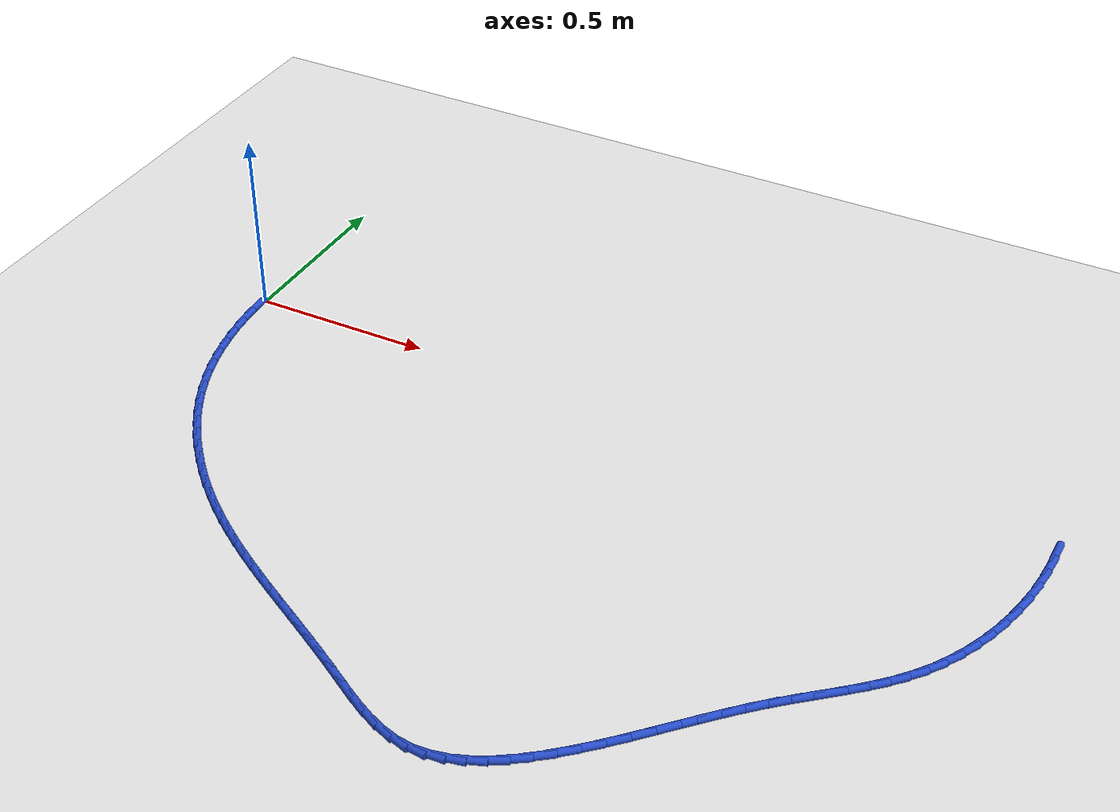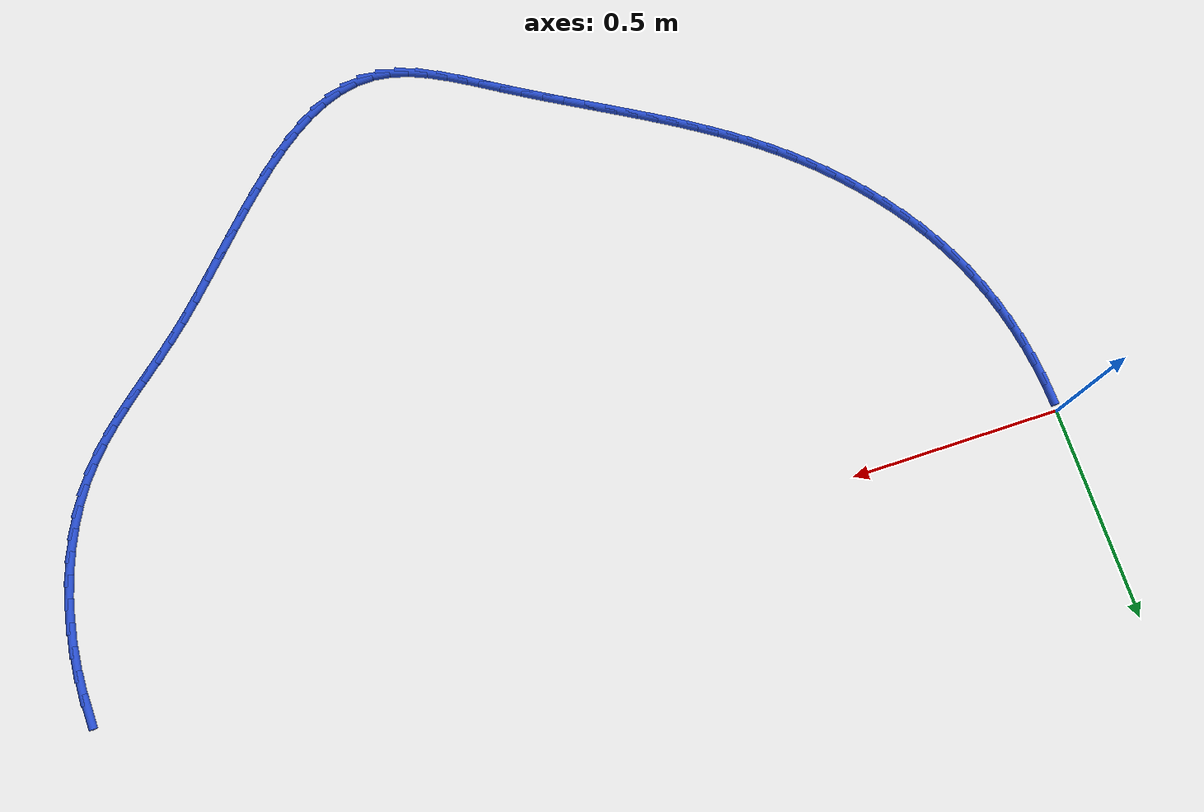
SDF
<sdf version="1.6">
 <world name="default">
  <model name="ground_plane">
   <static>1</static>
   <link name="link">
    <collision name="collision">
     <geometry><plane><normal>0 0 1</normal><size>100 100</size></plane></geometry>
     <surface><friction><ode><mu>100</mu><mu2>50</mu2></ode></friction></surface>
    </collision>
    <visual name="visual">
     <cast_shadows>0</cast_shadows>
     <geometry><plane><normal>0 0 1</normal><size>100 100</size></plane></geometry>
     <material>
      <script><uri>file://media/materials/scripts/gazebo.material</uri><name>Gazebo/WhiteGlow</name></script>
     </material>
    </visual>
   </link>
  </model>
  <model name="line">
   <link name="link_69">
    <pose>2.2905881452291728 -0.03405568172153571 0.01 0 1.57 -1.5349915259451106</pose>
    <collision name="collision">
     <geometry><cylinder><radius>0.01</radius><length>0.08</length></cylinder></geometry>
    </collision>
    <visual name="visual">
     <material>
      <script><name>Gazebo/Blue</name><uri>file://media/materials/scripts/gazebo.material</uri></script>
     </material>
     <geometry><cylinder><radius>0.01</radius><length>0.08</length></cylinder></geometry>
    </visual>
   </link>
   <link name="link_70">
    <pose>2.292531629596753 -0.08831247816643287 0.01 0 1.57 1.547344712376488</pose>
    <collision name="collision">
     <geometry><cylinder><radius>0.01</radius><length>0.08</length></cylinder></geometry>
    </collision>
    <visual name="visual">
     <material>
      <script><name>Gazebo/Blue</name><uri>file://media/materials/scripts/gazebo.material</uri></script>
     </material>
     <geometry><cylinder><radius>0.01</radius><length>0.08</length></cylinder></geometry>
    </visual>
   </link>
   <link name="link_71">
    <pose>2.291256569939955 -0.1426723134341711 0.01 0 1.57 1.488374771274081</pose>
    <collision name="collision">
     <geometry><cylinder><radius>0.01</radius><length>0.08</length></cylinder></geometry>
    </collision>
    <visual name="visual">
     <material>
      <script><name>Gazebo/Blue</name><uri>file://media/materials/scripts/gazebo.material</uri></script>
     </material>
     <geometry><cylinder><radius>0.01</radius><length>0.08</length></cylinder></geometry>
    </visual>
   </link>
   <link name="link_72">
    <pose>2.2867859690475045 -0.19679010919475426 0.01 0 1.57 1.4289743394219034</pose>
    <collision name="collision">
     <geometry><cylinder><radius>0.01</radius><length>0.08</length></cylinder></geometry>
    </collision>
    <visual name="visual">
     <material>
      <script><name>Gazebo/Blue</name><uri>file://media/materials/scripts/gazebo.material</uri></script>
     </material>
     <geometry><cylinder><radius>0.01</radius><length>0.08</length></cylinder></geometry>
    </visual>
   </link>
   <link name="link_73">
    <pose>2.279142829708126 -0.25032078711818645 0.01 0 1.57 1.3684155358077381</pose>
    <collision name="collision">
     <geometry><cylinder><radius>0.01</radius><length>0.08</length></cylinder></geometry>
    </collision>
    <visual name="visual">
     <material>
      <script><name>Gazebo/Blue</name><uri>file://media/materials/scripts/gazebo.material</uri></script>
     </material>
     <geometry><cylinder><radius>0.01</radius><length>0.08</length></cylinder></geometry>
    </visual>
   </link>
   <link name="link_74">
    <pose>2.268350154710547 -0.30291926887446946 0.01 0 1.57 1.3059500956653918</pose>
    <collision name="collision">
     <geometry><cylinder><radius>0.01</radius><length>0.08</length></cylinder></geometry>
    </collision>
    <visual name="visual">
     <material>
      <script><name>Gazebo/Blue</name><uri>file://media/materials/scripts/gazebo.material</uri></script>
     </material>
     <geometry><cylinder><radius>0.01</radius><length>0.08</length></cylinder></geometry>
    </visual>
   </link>
   <link name="link_75">
    <pose>2.2544309468434904 -0.35424047613360743 0.01 0 1.57 1.240802730282927</pose>
    <collision name="collision">
     <geometry><cylinder><radius>0.01</radius><length>0.08</length></cylinder></geometry>
    </collision>
    <visual name="visual">
     <material>
      <script><name>Gazebo/Blue</name><uri>file://media/materials/scripts/gazebo.material</uri></script>
     </material>
     <geometry><cylinder><radius>0.01</radius><length>0.08</length></cylinder></geometry>
    </visual>
   </link>
   <link name="link_76">
    <pose>2.237408208895684 -0.4039393305656038 0.01 0 1.57 1.172170246252659</pose>
    <collision name="collision">
     <geometry><cylinder><radius>0.01</radius><length>0.08</length></cylinder></geometry>
    </collision>
    <visual name="visual">
     <material>
      <script><name>Gazebo/Blue</name><uri>file://media/materials/scripts/gazebo.material</uri></script>
     </material>
     <geometry><cylinder><radius>0.01</radius><length>0.08</length></cylinder></geometry>
    </visual>
   </link>
   <link name="link_77">
    <pose>2.2173049436558534 -0.45167075384046196 0.01 0 1.57 1.0992306670727405</pose>
    <collision name="collision">
     <geometry><cylinder><radius>0.01</radius><length>0.08</length></cylinder></geometry>
    </collision>
    <visual name="visual">
     <material>
      <script><name>Gazebo/Blue</name><uri>file://media/materials/scripts/gazebo.material</uri></script>
     </material>
     <geometry><cylinder><radius>0.01</radius><length>0.08</length></cylinder></geometry>
    </visual>
   </link>
   <link name="link_78">
    <pose>2.194144153912722 -0.4970896676281859 0.01 0 1.57 1.0211683048369975</pose>
    <collision name="collision">
     <geometry><cylinder><radius>0.01</radius><length>0.08</length></cylinder></geometry>
    </collision>
    <visual name="visual">
     <material>
      <script><name>Gazebo/Blue</name><uri>file://media/materials/scripts/gazebo.material</uri></script>
     </material>
     <geometry><cylinder><radius>0.01</radius><length>0.08</length></cylinder></geometry>
    </visual>
   </link>
   <link name="link_79">
    <pose>2.167948842455017 -0.5398509935987776 0.01 0 1.57 0.9375025532515058</pose>
    <collision name="collision">
     <geometry><cylinder><radius>0.01</radius><length>0.08</length></cylinder></geometry>
    </collision>
    <visual name="visual">
     <material>
      <script><name>Gazebo/Blue</name><uri>file://media/materials/scripts/gazebo.material</uri></script>
     </material>
     <geometry><cylinder><radius>0.01</radius><length>0.08</length></cylinder></geometry>
    </visual>
   </link>
   <link name="link_80">
    <pose>2.1387476147788984 -0.5796253803741541 0.01 0 1.57 0.8571295840001061</pose>
    <collision name="collision">
     <geometry><cylinder><radius>0.01</radius><length>0.08</length></cylinder></geometry>
    </collision>
    <visual name="visual">
     <material>
      <script><name>Gazebo/Blue</name><uri>file://media/materials/scripts/gazebo.material</uri></script>
     </material>
     <geometry><cylinder><radius>0.01</radius><length>0.08</length></cylinder></geometry>
    </visual>
   </link>
   <link name="link_81">
    <pose>2.1067464695293574 -0.6165814239622107 0.01 0 1.57 0.7927398570487014</pose>
    <collision name="collision">
     <geometry><cylinder><radius>0.01</radius><length>0.08</length></cylinder></geometry>
    </collision>
    <visual name="visual">
     <material>
      <script><name>Gazebo/Blue</name><uri>file://media/materials/scripts/gazebo.material</uri></script>
     </material>
     <geometry><cylinder><radius>0.01</radius><length>0.08</length></cylinder></geometry>
    </visual>
   </link>
   <link name="link_82">
    <pose>2.072360862323251 -0.6514756717787852 0.01 0 1.57 0.7465462474326663</pose>
    <collision name="collision">
     <geometry><cylinder><radius>0.01</radius><length>0.08</length></cylinder></geometry>
    </collision>
    <visual name="visual">
     <material>
      <script><name>Gazebo/Blue</name><uri>file://media/materials/scripts/gazebo.material</uri></script>
     </material>
     <geometry><cylinder><radius>0.01</radius><length>0.08</length></cylinder></geometry>
    </visual>
   </link>
   <link name="link_83">
    <pose>2.036018319795308 -0.6850985549146714 0.01 0 1.57 0.7188896999915876</pose>
    <collision name="collision">
     <geometry><cylinder><radius>0.01</radius><length>0.08</length></cylinder></geometry>
    </collision>
    <visual name="visual">
     <material>
      <script><name>Gazebo/Blue</name><uri>file://media/materials/scripts/gazebo.material</uri></script>
     </material>
     <geometry><cylinder><radius>0.01</radius><length>0.08</length></cylinder></geometry>
    </visual>
   </link>
   <link name="link_84">
    <pose>1.9981463685802545 -0.7182405044606647 0.01 0 1.57 0.709295992482945</pose>
    <collision name="collision">
     <geometry><cylinder><radius>0.01</radius><length>0.08</length></cylinder></geometry>
    </collision>
    <visual name="visual">
     <material>
      <script><name>Gazebo/Blue</name><uri>file://media/materials/scripts/gazebo.material</uri></script>
     </material>
     <geometry><cylinder><radius>0.01</radius><length>0.08</length></cylinder></geometry>
    </visual>
   </link>
   <link name="link_85">
    <pose>1.959172535312819 -0.7516919515075599 0.01 0 1.57 0.716815289029403</pose>
    <collision name="collision">
     <geometry><cylinder><radius>0.01</radius><length>0.08</length></cylinder></geometry>
    </collision>
    <visual name="visual">
     <material>
      <script><name>Gazebo/Blue</name><uri>file://media/materials/scripts/gazebo.material</uri></script>
     </material>
     <geometry><cylinder><radius>0.01</radius><length>0.08</length></cylinder></geometry>
    </visual>
   </link>
   <link name="link_86">
    <pose>1.919524346627728 -0.7862433271461517 0.01 0 1.57 0.7401914751983255</pose>
    <collision name="collision">
     <geometry><cylinder><radius>0.01</radius><length>0.08</length></cylinder></geometry>
    </collision>
    <visual name="visual">
     <material>
      <script><name>Gazebo/Blue</name><uri>file://media/materials/scripts/gazebo.material</uri></script>
     </material>
     <geometry><cylinder><radius>0.01</radius><length>0.08</length></cylinder></geometry>
    </visual>
   </link>
   <link name="link_87">
    <pose>1.8796293285873504 -0.8226850607092993 0.01 0 1.57 0.7734311277408342</pose>
    <collision name="collision">
     <geometry><cylinder><radius>0.01</radius><length>0.08</length></cylinder></geometry>
    </collision>
    <visual name="visual">
     <material>
      <script><name>Gazebo/Blue</name><uri>file://media/materials/scripts/gazebo.material</uri></script>
     </material>
     <geometry><cylinder><radius>0.01</radius><length>0.08</length></cylinder></geometry>
    </visual>
   </link>
   <link name="link_88">
    <pose>1.8398291498522212 -0.8615438794787794 0.01 0 1.57 0.7992972988948601</pose>
    <collision name="collision">
     <geometry><cylinder><radius>0.01</radius><length>0.08</length></cylinder></geometry>
    </collision>
    <visual name="visual">
     <material>
      <script><name>Gazebo/Blue</name><uri>file://media/materials/scripts/gazebo.material</uri></script>
     </material>
     <geometry><cylinder><radius>0.01</radius><length>0.08</length></cylinder></geometry>
    </visual>
   </link>
   <link name="link_89">
    <pose>1.8001412458244523 -0.9023506621147867 0.01 0 1.57 0.8149648660872176</pose>
    <collision name="collision">
     <geometry><cylinder><radius>0.01</radius><length>0.08</length></cylinder></geometry>
    </collision>
    <visual name="visual">
     <material>
      <script><name>Gazebo/Blue</name><uri>file://media/materials/scripts/gazebo.material</uri></script>
     </material>
     <geometry><cylinder><radius>0.01</radius><length>0.08</length></cylinder></geometry>
    </visual>
   </link>
   <link name="link_90">
    <pose>1.760506527272239 -0.9444012498492852 0.01 0 1.57 0.8212526810795969</pose>
    <collision name="collision">
     <geometry><cylinder><radius>0.01</radius><length>0.08</length></cylinder></geometry>
    </collision>
    <visual name="visual">
     <material>
      <script><name>Gazebo/Blue</name><uri>file://media/materials/scripts/gazebo.material</uri></script>
     </material>
     <geometry><cylinder><radius>0.01</radius><length>0.08</length></cylinder></geometry>
    </visual>
   </link>
   <link name="link_91">
    <pose>1.7208659049637767 -0.9869914839142405 0.01 0 1.57 0.8185050450709923</pose>
    <collision name="collision">
     <geometry><cylinder><radius>0.01</radius><length>0.08</length></cylinder></geometry>
    </collision>
    <visual name="visual">
     <material>
      <script><name>Gazebo/Blue</name><uri>file://media/materials/scripts/gazebo.material</uri></script>
     </material>
     <geometry><cylinder><radius>0.01</radius><length>0.08</length></cylinder></geometry>
    </visual>
   </link>
   <link name="link_92">
    <pose>1.681160289667262 -1.0294172055416158 0.01 0 1.57 0.8066189843824776</pose>
    <collision name="collision">
     <geometry><cylinder><radius>0.01</radius><length>0.08</length></cylinder></geometry>
    </collision>
    <visual name="visual">
     <material>
      <script><name>Gazebo/Blue</name><uri>file://media/materials/scripts/gazebo.material</uri></script>
     </material>
     <geometry><cylinder><radius>0.01</radius><length>0.08</length></cylinder></geometry>
    </visual>
   </link>
   <link name="link_93">
    <pose>1.6413305921508894 -1.070974255963376 0.01 0 1.57 0.7850400438844864</pose>
    <collision name="collision">
     <geometry><cylinder><radius>0.01</radius><length>0.08</length></cylinder></geometry>
    </collision>
    <visual name="visual">
     <material>
      <script><name>Gazebo/Blue</name><uri>file://media/materials/scripts/gazebo.material</uri></script>
     </material>
     <geometry><cylinder><radius>0.01</radius><length>0.08</length></cylinder></geometry>
    </visual>
   </link>
   <link name="link_94">
    <pose>1.6013177231828548 -1.1109584764114857 0.01 0 1.57 0.7527286625997496</pose>
    <collision name="collision">
     <geometry><cylinder><radius>0.01</radius><length>0.08</length></cylinder></geometry>
    </collision>
    <visual name="visual">
     <material>
      <script><name>Gazebo/Blue</name><uri>file://media/materials/scripts/gazebo.material</uri></script>
     </material>
     <geometry><cylinder><radius>0.01</radius><length>0.08</length></cylinder></geometry>
    </visual>
   </link>
   <link name="link_95">
    <pose>1.5610625935313522 -1.14866570811791 0.01 0 1.57 0.7081056280828703</pose>
    <collision name="collision">
     <geometry><cylinder><radius>0.01</radius><length>0.08</length></cylinder></geometry>
    </collision>
    <visual name="visual">
     <material>
      <script><name>Gazebo/Blue</name><uri>file://media/materials/scripts/gazebo.material</uri></script>
     </material>
     <geometry><cylinder><radius>0.01</radius><length>0.08</length></cylinder></geometry>
    </visual>
   </link>
   <link name="link_96">
    <pose>1.520506113964579 -1.1833917923146118 0.01 0 1.57 0.649001094173011</pose>
    <collision name="collision">
     <geometry><cylinder><radius>0.01</radius><length>0.08</length></cylinder></geometry>
    </collision>
    <visual name="visual">
     <material>
      <script><name>Gazebo/Blue</name><uri>file://media/materials/scripts/gazebo.material</uri></script>
     </material>
     <geometry><cylinder><radius>0.01</radius><length>0.08</length></cylinder></geometry>
    </visual>
   </link>
   <link name="link_97">
    <pose>1.4795891952507296 -1.2144325702335568 0.01 0 1.57 0.572669501506226</pose>
    <collision name="collision">
     <geometry><cylinder><radius>0.01</radius><length>0.08</length></cylinder></geometry>
    </collision>
    <visual name="visual">
     <material>
      <script><name>Gazebo/Blue</name><uri>file://media/materials/scripts/gazebo.material</uri></script>
     </material>
     <geometry><cylinder><radius>0.01</radius><length>0.08</length></cylinder></geometry>
    </visual>
   </link>
   <link name="link_98">
    <pose>1.4382527481579994 -1.241083883106709 0.01 0 1.57 0.4760088044756101</pose>
    <collision name="collision">
     <geometry><cylinder><radius>0.01</radius><length>0.08</length></cylinder></geometry>
    </collision>
    <visual name="visual">
     <material>
      <script><name>Gazebo/Blue</name><uri>file://media/materials/scripts/gazebo.material</uri></script>
     </material>
     <geometry><cylinder><radius>0.01</radius><length>0.08</length></cylinder></geometry>
    </visual>
   </link>
   <link name="link_99">
    <pose>1.396437683454584 -1.2626415721660331 0.01 0 1.57 0.35623491289577136</pose>
    <collision name="collision">
     <geometry><cylinder><radius>0.01</radius><length>0.08</length></cylinder></geometry>
    </collision>
    <visual name="visual">
     <material>
      <script><name>Gazebo/Blue</name><uri>file://media/materials/scripts/gazebo.material</uri></script>
     </material>
     <geometry><cylinder><radius>0.01</radius><length>0.08</length></cylinder></geometry>
    </visual>
   </link>
   <link name="link_100">
    <pose>1.354084911908678 -1.2784014786434934 0.01 0 1.57 0.21230593463131833</pose>
    <collision name="collision">
     <geometry><cylinder><radius>0.01</radius><length>0.08</length></cylinder></geometry>
    </collision>
    <visual name="visual">
     <material>
      <script><name>Gazebo/Blue</name><uri>file://media/materials/scripts/gazebo.material</uri></script>
     </material>
     <geometry><cylinder><radius>0.01</radius><length>0.08</length></cylinder></geometry>
    </visual>
   </link>
   <link name="link_101">
    <pose>1.3111353442884779 -1.2876594437710545 0.01 0 1.57 0.047020555244151316</pose>
    <collision name="collision">
     <geometry><cylinder><radius>0.01</radius><length>0.08</length></cylinder></geometry>
    </collision>
    <visual name="visual">
     <material>
      <script><name>Gazebo/Blue</name><uri>file://media/materials/scripts/gazebo.material</uri></script>
     </material>
     <geometry><cylinder><radius>0.01</radius><length>0.08</length></cylinder></geometry>
    </visual>
   </link>
   <link name="link_102">
    <pose>1.2675298913621793 -1.289711308780681 0.01 0 1.57 -0.13091471887019346</pose>
    <collision name="collision">
     <geometry><cylinder><radius>0.01</radius><length>0.08</length></cylinder></geometry>
    </collision>
    <visual name="visual">
     <material>
      <script><name>Gazebo/Blue</name><uri>file://media/materials/scripts/gazebo.material</uri></script>
     </material>
     <geometry><cylinder><radius>0.01</radius><length>0.08</length></cylinder></geometry>
    </visual>
   </link>
   <link name="link_103">
    <pose>1.2232117244146907 -1.283876033991782 0.01 0 1.57 -0.2905737713174524</pose>
    <collision name="collision">
     <geometry><cylinder><radius>0.01</radius><length>0.08</length></cylinder></geometry>
    </collision>
    <visual name="visual">
     <material>
      <script><name>Gazebo/Blue</name><uri>file://media/materials/scripts/gazebo.material</uri></script>
     </material>
     <geometry><cylinder><radius>0.01</radius><length>0.08</length></cylinder></geometry>
    </visual>
   </link>
   <link name="link_104">
    <pose>1.178216732093151 -1.2704208323033115 0.01 0 1.57 -0.4056576552784526</pose>
    <collision name="collision">
     <geometry><cylinder><radius>0.01</radius><length>0.08</length></cylinder></geometry>
    </collision>
    <visual name="visual">
     <material>
      <script><name>Gazebo/Blue</name><uri>file://media/materials/scripts/gazebo.material</uri></script>
     </material>
     <geometry><cylinder><radius>0.01</radius><length>0.08</length></cylinder></geometry>
    </visual>
   </link>
   <link name="link_105">
    <pose>1.1327041233461455 -1.2508741560535659 0.01 0 1.57 -0.4824992332986203</pose>
    <collision name="collision">
     <geometry><cylinder><radius>0.01</radius><length>0.08</length></cylinder></geometry>
    </collision>
    <visual name="visual">
     <material>
      <script><name>Gazebo/Blue</name><uri>file://media/materials/scripts/gazebo.material</uri></script>
     </material>
     <geometry><cylinder><radius>0.01</radius><length>0.08</length></cylinder></geometry>
    </visual>
   </link>
   <link name="link_106">
    <pose>1.086841644746767 -1.2268517748240202 0.01 0 1.57 -0.5284465047449839</pose>
    <collision name="collision">
     <geometry><cylinder><radius>0.01</radius><length>0.08</length></cylinder></geometry>
    </collision>
    <visual name="visual">
     <material>
      <script><name>Gazebo/Blue</name><uri>file://media/materials/scripts/gazebo.material</uri></script>
     </material>
     <geometry><cylinder><radius>0.01</radius><length>0.08</length></cylinder></geometry>
    </visual>
   </link>
   <link name="link_107">
    <pose>1.040797042868111 -1.19996945819615 0.01 0 1.57 -0.5482225725851608</pose>
    <collision name="collision">
     <geometry><cylinder><radius>0.01</radius><length>0.08</length></cylinder></geometry>
    </collision>
    <visual name="visual">
     <material>
      <script><name>Gazebo/Blue</name><uri>file://media/materials/scripts/gazebo.material</uri></script>
     </material>
     <geometry><cylinder><radius>0.01</radius><length>0.08</length></cylinder></geometry>
    </visual>
   </link>
   <link name="link_108">
    <pose>0.9947380642832707 -1.17184297575143 0.01 0 1.57 -0.544639673595588</pose>
    <collision name="collision">
     <geometry><cylinder><radius>0.01</radius><length>0.08</length></cylinder></geometry>
    </collision>
    <visual name="visual">
     <material>
      <script><name>Gazebo/Blue</name><uri>file://media/materials/scripts/gazebo.material</uri></script>
     </material>
     <geometry><cylinder><radius>0.01</radius><length>0.08</length></cylinder></geometry>
    </visual>
   </link>
   <link name="link_109">
    <pose>0.9488288367847354 -1.1440332757342941 0.01 0 1.57 -0.532026081633951</pose>
    <collision name="collision">
     <geometry><cylinder><radius>0.01</radius><length>0.08</length></cylinder></geometry>
    </collision>
    <visual name="visual">
     <material>
      <script><name>Gazebo/Blue</name><uri>file://media/materials/scripts/gazebo.material</uri></script>
     </material>
     <geometry><cylinder><radius>0.01</radius><length>0.08</length></cylinder></geometry>
    </visual>
   </link>
   <link name="link_110">
    <pose>0.903171171348249 -1.1171572615335372 0.01 0 1.57 -0.5225130414330025</pose>
    <collision name="collision">
     <geometry><cylinder><radius>0.01</radius><length>0.08</length></cylinder></geometry>
    </collision>
    <visual name="visual">
     <material>
      <script><name>Gazebo/Blue</name><uri>file://media/materials/scripts/gazebo.material</uri></script>
     </material>
     <geometry><cylinder><radius>0.01</radius><length>0.08</length></cylinder></geometry>
    </visual>
   </link>
   <link name="link_111">
    <pose>0.8578143526601623 -1.0910361095435694 0.01 0 1.57 -0.5166461686303685</pose>
    <collision name="collision">
     <geometry><cylinder><radius>0.01</radius><length>0.08</length></cylinder></geometry>
    </collision>
    <visual name="visual">
     <material>
      <script><name>Gazebo/Blue</name><uri>file://media/materials/scripts/gazebo.material</uri></script>
     </material>
     <geometry><cylinder><radius>0.01</radius><length>0.08</length></cylinder></geometry>
    </visual>
   </link>
   <link name="link_112">
    <pose>0.8128060226806153 -1.06546611030441 0.01 0 1.57 -0.5145696283234807</pose>
    <collision name="collision">
     <geometry><cylinder><radius>0.01</radius><length>0.08</length></cylinder></geometry>
    </collision>
    <visual name="visual">
     <material>
      <script><name>Gazebo/Blue</name><uri>file://media/materials/scripts/gazebo.material</uri></script>
     </material>
     <geometry><cylinder><radius>0.01</radius><length>0.08</length></cylinder></geometry>
    </visual>
   </link>
   <link name="link_113">
    <pose>0.7681938233697474 -1.0402435543560797 0.01 0 1.57 -0.5164062735057299</pose>
    <collision name="collision">
     <geometry><cylinder><radius>0.01</radius><length>0.08</length></cylinder></geometry>
    </collision>
    <visual name="visual">
     <material>
      <script><name>Gazebo/Blue</name><uri>file://media/materials/scripts/gazebo.material</uri></script>
     </material>
     <geometry><cylinder><radius>0.01</radius><length>0.08</length></cylinder></geometry>
    </visual>
   </link>
   <link name="link_114">
    <pose>0.7240253966877007 -1.0151647322386006 0.01 0 1.57 -0.5222560073862279</pose>
    <collision name="collision">
     <geometry><cylinder><radius>0.01</radius><length>0.08</length></cylinder></geometry>
    </collision>
    <visual name="visual">
     <material>
      <script><name>Gazebo/Blue</name><uri>file://media/materials/scripts/gazebo.material</uri></script>
     </material>
     <geometry><cylinder><radius>0.01</radius><length>0.08</length></cylinder></geometry>
    </visual>
   </link>
   <link name="link_115">
    <pose>0.6803483845946154 -0.9900259344919929 0.01 0 1.57 -0.5321926380067938</pose>
    <collision name="collision">
     <geometry><cylinder><radius>0.01</radius><length>0.08</length></cylinder></geometry>
    </collision>
    <visual name="visual">
     <material>
      <script><name>Gazebo/Blue</name><uri>file://media/materials/scripts/gazebo.material</uri></script>
     </material>
     <geometry><cylinder><radius>0.01</radius><length>0.08</length></cylinder></geometry>
    </visual>
   </link>
   <link name="link_116">
    <pose>0.6372104290506315 -0.9646234516562776 0.01 0 1.57 -0.5462590167051334</pose>
    <collision name="collision">
     <geometry><cylinder><radius>0.01</radius><length>0.08</length></cylinder></geometry>
    </collision>
    <visual name="visual">
     <material>
      <script><name>Gazebo/Blue</name><uri>file://media/materials/scripts/gazebo.material</uri></script>
     </material>
     <geometry><cylinder><radius>0.01</radius><length>0.08</length></cylinder></geometry>
    </visual>
   </link>
   <link name="link_117">
    <pose>0.5946591720158888 -0.9387535742714745 0.01 0 1.57 -0.5644604287260564</pose>
    <collision name="collision">
     <geometry><cylinder><radius>0.01</radius><length>0.08</length></cylinder></geometry>
    </collision>
    <visual name="visual">
     <material>
      <script><name>Gazebo/Blue</name><uri>file://media/materials/scripts/gazebo.material</uri></script>
     </material>
     <geometry><cylinder><radius>0.01</radius><length>0.08</length></cylinder></geometry>
    </visual>
   </link>
   <link name="link_118">
    <pose>0.5527422554505296 -0.9122125928776061 0.01 0 1.57 -0.586756451067905</pose>
    <collision name="collision">
     <geometry><cylinder><radius>0.01</radius><length>0.08</length></cylinder></geometry>
    </collision>
    <visual name="visual">
     <material>
      <script><name>Gazebo/Blue</name><uri>file://media/materials/scripts/gazebo.material</uri></script>
     </material>
     <geometry><cylinder><radius>0.01</radius><length>0.08</length></cylinder></geometry>
    </visual>
   </link>
   <link name="link_119">
    <pose>0.5115073213146929 -0.8847967980146922 0.01 0 1.57 -0.6130518141425226</pose>
    <collision name="collision">
     <geometry><cylinder><radius>0.01</radius><length>0.08</length></cylinder></geometry>
    </collision>
    <visual name="visual">
     <material>
      <script><name>Gazebo/Blue</name><uri>file://media/materials/scripts/gazebo.material</uri></script>
     </material>
     <geometry><cylinder><radius>0.01</radius><length>0.08</length></cylinder></geometry>
    </visual>
   </link>
   <link name="link_120">
    <pose>0.4710020115685199 -0.8563024802227543 0.01 0 1.57 -0.6431871831965266</pose>
    <collision name="collision">
     <geometry><cylinder><radius>0.01</radius><length>0.08</length></cylinder></geometry>
    </collision>
    <visual name="visual">
     <material>
      <script><name>Gazebo/Blue</name><uri>file://media/materials/scripts/gazebo.material</uri></script>
     </material>
     <geometry><cylinder><radius>0.01</radius><length>0.08</length></cylinder></geometry>
    </visual>
   </link>
   <link name="link_121">
    <pose>0.43127396817215075 -0.8265259300418124 0.01 0 1.57 -0.6769311610373059</pose>
    <collision name="collision">
     <geometry><cylinder><radius>0.01</radius><length>0.08</length></cylinder></geometry>
    </collision>
    <visual name="visual">
     <material>
      <script><name>Gazebo/Blue</name><uri>file://media/materials/scripts/gazebo.material</uri></script>
     </material>
     <geometry><cylinder><radius>0.01</radius><length>0.08</length></cylinder></geometry>
    </visual>
   </link>
   <link name="link_122">
    <pose>0.3923708330857254 -0.7952634380118877 0.01 0 1.57 -0.7139010001355185</pose>
    <collision name="collision">
     <geometry><cylinder><radius>0.01</radius><length>0.08</length></cylinder></geometry>
    </collision>
    <visual name="visual">
     <material>
      <script><name>Gazebo/Blue</name><uri>file://media/materials/scripts/gazebo.material</uri></script>
     </material>
     <geometry><cylinder><radius>0.01</radius><length>0.08</length></cylinder></geometry>
    </visual>
   </link>
   <link name="link_123">
    <pose>0.3543454884740919 -0.7623207686495386 0.01 0 1.57 -0.7526993790927952</pose>
    <collision name="collision">
     <geometry><cylinder><radius>0.01</radius><length>0.08</length></cylinder></geometry>
    </collision>
    <visual name="visual">
     <material>
      <script><name>Gazebo/Blue</name><uri>file://media/materials/scripts/gazebo.material</uri></script>
     </material>
     <geometry><cylinder><radius>0.01</radius><length>0.08</length></cylinder></geometry>
    </visual>
   </link>
   <link name="link_124">
    <pose>0.31733380879131545 -0.7276537315639986 0.01 0 1.57 -0.7926073651240686</pose>
    <collision name="collision">
     <geometry><cylinder><radius>0.01</radius><length>0.08</length></cylinder></geometry>
    </collision>
    <visual name="visual">
     <material>
      <script><name>Gazebo/Blue</name><uri>file://media/materials/scripts/gazebo.material</uri></script>
     </material>
     <geometry><cylinder><radius>0.01</radius><length>0.08</length></cylinder></geometry>
    </visual>
   </link>
   <link name="link_125">
    <pose>0.2815379845031122 -0.6913380317452371 0.01 0 1.57 -0.8339252536202822</pose>
    <collision name="collision">
     <geometry><cylinder><radius>0.01</radius><length>0.08</length></cylinder></geometry>
    </collision>
    <visual name="visual">
     <material>
      <script><name>Gazebo/Blue</name><uri>file://media/materials/scripts/gazebo.material</uri></script>
     </material>
     <geometry><cylinder><radius>0.01</radius><length>0.08</length></cylinder></geometry>
    </visual>
   </link>
   <link name="link_126">
    <pose>0.24716205832748453 -0.653452722944519 0.01 0 1.57 -0.8769765358589026</pose>
    <collision name="collision">
     <geometry><cylinder><radius>0.01</radius><length>0.08</length></cylinder></geometry>
    </collision>
    <visual name="visual">
     <material>
      <script><name>Gazebo/Blue</name><uri>file://media/materials/scripts/gazebo.material</uri></script>
     </material>
     <geometry><cylinder><radius>0.01</radius><length>0.08</length></cylinder></geometry>
    </visual>
   </link>
   <link name="link_127">
    <pose>0.21441007298243644 -0.6140768589131108 0.01 0 1.57 -0.9220830777793051</pose>
    <collision name="collision">
     <geometry><cylinder><radius>0.01</radius><length>0.08</length></cylinder></geometry>
    </collision>
    <visual name="visual">
     <material>
      <script><name>Gazebo/Blue</name><uri>file://media/materials/scripts/gazebo.material</uri></script>
     </material>
     <geometry><cylinder><radius>0.01</radius><length>0.08</length></cylinder></geometry>
    </visual>
   </link>
   <link name="link_128">
    <pose>0.18348607118597035 -0.573289493402278 0.01 0 1.57 -0.9695640441239312</pose>
    <collision name="collision">
     <geometry><cylinder><radius>0.01</radius><length>0.08</length></cylinder></geometry>
    </collision>
    <visual name="visual">
     <material>
      <script><name>Gazebo/Blue</name><uri>file://media/materials/scripts/gazebo.material</uri></script>
     </material>
     <geometry><cylinder><radius>0.01</radius><length>0.08</length></cylinder></geometry>
    </visual>
   </link>
   <link name="link_129">
    <pose>0.15459409565608928 -0.5311696801632858 0.01 0 1.57 -1.0197318386779082</pose>
    <collision name="collision">
     <geometry><cylinder><radius>0.01</radius><length>0.08</length></cylinder></geometry>
    </collision>
    <visual name="visual">
     <material>
      <script><name>Gazebo/Blue</name><uri>file://media/materials/scripts/gazebo.material</uri></script>
     </material>
     <geometry><cylinder><radius>0.01</radius><length>0.08</length></cylinder></geometry>
    </visual>
   </link>
   <link name="link_130">
    <pose>0.12793818911079607 -0.48779647294740003 0.01 0 1.57 -1.0728843843180227</pose>
    <collision name="collision">
     <geometry><cylinder><radius>0.01</radius><length>0.08</length></cylinder></geometry>
    </collision>
    <visual name="visual">
     <material>
      <script><name>Gazebo/Blue</name><uri>file://media/materials/scripts/gazebo.material</uri></script>
     </material>
     <geometry><cylinder><radius>0.01</radius><length>0.08</length></cylinder></geometry>
    </visual>
   </link>
   <link name="link_131">
    <pose>0.10372239426809333 -0.4432489255058854 0.01 0 1.57 -1.1289245766619644</pose>
    <collision name="collision">
     <geometry><cylinder><radius>0.01</radius><length>0.08</length></cylinder></geometry>
    </collision>
    <visual name="visual">
     <material>
      <script><name>Gazebo/Blue</name><uri>file://media/materials/scripts/gazebo.material</uri></script>
     </material>
     <geometry><cylinder><radius>0.01</radius><length>0.08</length></cylinder></geometry>
    </visual>
   </link>
   <link name="link_132">
    <pose>0.08212930404230591 -0.39760424407780925 0.01 0 1.57 -1.185156213863412</pose>
    <collision name="collision">
     <geometry><cylinder><radius>0.01</radius><length>0.08</length></cylinder></geometry>
    </collision>
    <visual name="visual">
     <material>
      <script><name>Gazebo/Blue</name><uri>file://media/materials/scripts/gazebo.material</uri></script>
     </material>
     <geometry><cylinder><radius>0.01</radius><length>0.08</length></cylinder></geometry>
    </visual>
   </link>
   <link name="link_133">
    <pose>0.06317932083897779 -0.35092566512665674 0.01 0 1.57 -1.2400943070402501</pose>
    <collision name="collision">
     <geometry><cylinder><radius>0.01</radius><length>0.08</length></cylinder></geometry>
    </collision>
    <visual name="visual">
     <material>
      <script><name>Gazebo/Blue</name><uri>file://media/materials/scripts/gazebo.material</uri></script>
     </material>
     <geometry><cylinder><radius>0.01</radius><length>0.08</length></cylinder></geometry>
    </visual>
   </link>
   <link name="link_134">
    <pose>0.046818694276249795 -0.3032700381959487 0.01 0 1.57 -1.293513576788088</pose>
    <collision name="collision">
     <geometry><cylinder><radius>0.01</radius><length>0.08</length></cylinder></geometry>
    </collision>
    <visual name="visual">
     <material>
      <script><name>Gazebo/Blue</name><uri>file://media/materials/scripts/gazebo.material</uri></script>
     </material>
     <geometry><cylinder><radius>0.01</radius><length>0.08</length></cylinder></geometry>
    </visual>
   </link>
   <link name="link_135">
    <pose>0.03299329177639877 -0.2546941799099515 0.01 0 1.57 -1.3452413406294914</pose>
    <collision name="collision">
     <geometry><cylinder><radius>0.01</radius><length>0.08</length></cylinder></geometry>
    </collision>
    <visual name="visual">
     <material>
      <script><name>Gazebo/Blue</name><uri>file://media/materials/scripts/gazebo.material</uri></script>
     </material>
     <geometry><cylinder><radius>0.01</radius><length>0.08</length></cylinder></geometry>
    </visual>
   </link>
   <link name="link_136">
    <pose>0.021648980761702213 -0.205254906892934 0.01 0 1.57 -1.395150871834482</pose>
    <collision name="collision">
     <geometry><cylinder><radius>0.01</radius><length>0.08</length></cylinder></geometry>
    </collision>
    <visual name="visual">
     <material>
      <script><name>Gazebo/Blue</name><uri>file://media/materials/scripts/gazebo.material</uri></script>
     </material>
     <geometry><cylinder><radius>0.01</radius><length>0.08</length></cylinder></geometry>
    </visual>
   </link>
   <link name="link_137">
    <pose>0.012731628654437 -0.15500903576916283 0.01 0 1.57 -1.4431590240774184</pose>
    <collision name="collision">
     <geometry><cylinder><radius>0.01</radius><length>0.08</length></cylinder></geometry>
    </collision>
    <visual name="visual">
     <material>
      <script><name>Gazebo/Blue</name><uri>file://media/materials/scripts/gazebo.material</uri></script>
     </material>
     <geometry><cylinder><radius>0.01</radius><length>0.08</length></cylinder></geometry>
    </visual>
   </link>
   <link name="link_138">
    <pose>0.006187102876880171 -0.10401338316290534 0.01 0 1.57 -1.4892221873258726</pose>
    <collision name="collision">
     <geometry><cylinder><radius>0.01</radius><length>0.08</length></cylinder></geometry>
    </collision>
    <visual name="visual">
     <material>
      <script><name>Gazebo/Blue</name><uri>file://media/materials/scripts/gazebo.material</uri></script>
     </material>
     <geometry><cylinder><radius>0.01</radius><length>0.08</length></cylinder></geometry>
    </visual>
   </link>
   <link name="link_139">
    <pose>0.0019612708513088066 -0.05232476569842882 0.01 0 1.57 -1.5333312162789081</pose>
    <collision name="collision">
     <geometry><cylinder><radius>0.01</radius><length>0.08</length></cylinder></geometry>
    </collision>
    <visual name="visual">
     <material>
      <script><name>Gazebo/Blue</name><uri>file://media/materials/scripts/gazebo.material</uri></script>
     </material>
     <geometry><cylinder><radius>0.01</radius><length>0.08</length></cylinder></geometry>
    </visual>
   </link>
  </model>
 </world>
</sdf>
